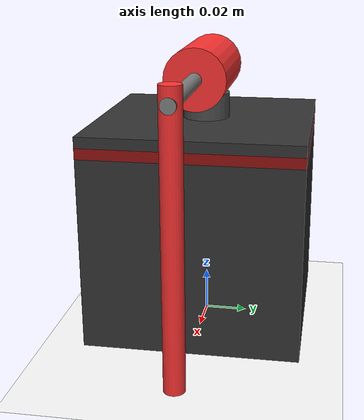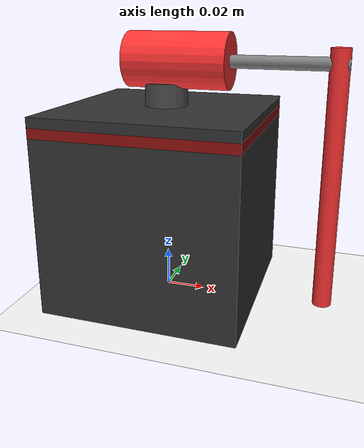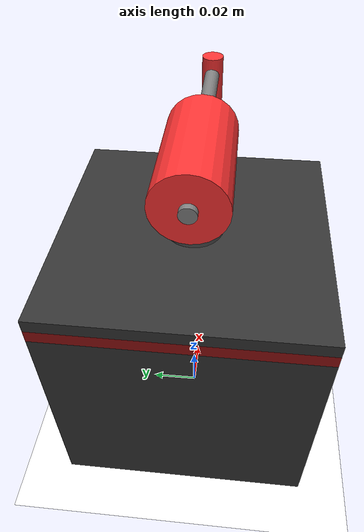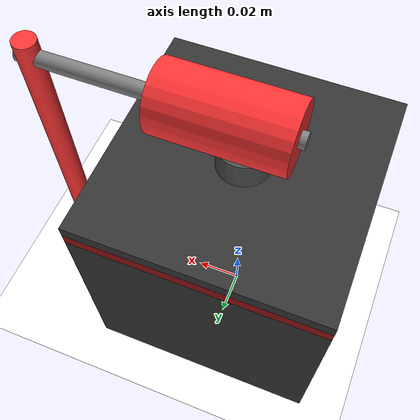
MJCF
<?xml version="1.0" encoding="utf-8"?>
<mujoco model="qube_servo3">
  <compiler angle="radian" inertiafromgeom="true"/>
  <option timestep="0.001" gravity="0 0 -9.82"/>

  <asset>
    <material name="cube_mat" rgba="0.2 0.2 0.2 1"/>
    <material name="arm_mat" rgba="0.5 0.5 0.5 1"/>
    <material name="pendulum_mat" rgba="1.0 0.2 0.2 1"/>
    <material name="joint_mat" rgba="0.3 0.3 0.3 1"/>
    <material name="led" rgba="1.0 0.0 0.0 0.5"/>
    <material name="floor" rgba="1 1 1 1"/>
  </asset>

  <worldbody>
    <!-- Floor -->
    <geom type="plane" size="1 1 0.05" material="floor" pos="0 0 -0.0001"/>

    <!-- Base fixed to world -->
    <body name="cube" pos="0 0 0.0501">
      <geom type="box"
            size="0.0501 0.0501 0.0501"
            mass="5.0"
            material="cube_mat"/>

      <geom type="box"
            size="0.05011"
            fromto="0 0 0.045 0 0 0.04"
            material="led"/>
    </body>

    <!-- Motor axis body: rotates around z-axis by theta -->
    <body name="motor_axis" pos="0 0 0.123">
      <joint name="theta"
             type="hinge"
             pos="0 0 0"
             axis="0 0 1"
             limited="true"
              range="-2.35619 2.35619"
             damping="0.00001"/>

      <!-- Motor shaft / axis visual, rotates with theta -->
      <geom type="cylinder"
            size="0.011"
            fromto="0 0 -0.0228 0 0 -0.011"
            mass="0.0106"
            material="joint_mat"/>

      <!-- Visual encoder attached to motor axis, negligible mass -->
      <geom type="cylinder"
            size="0.014"
            fromto="-0.019 0 0 0.033 0 0"
            mass="0.000001"
            contype="0"
            conaffinity="0"
            material="pendulum_mat"/>

      <!-- Arm body: connected to motor_axis through alpha hinge -->
      <body name="arm" pos="0 0 0">
        <joint name="alpha"
               type="hinge"
               pos="0 0 0"
               axis="1 0 0"
               damping="0.00001"/>

        <!-- Arm geometry: rotates with alpha -->
        <geom type="cylinder"
              size="0.00325"
              fromto="0.0886 0 0 -0.0215 0 0"
              mass="0.095"
              material="arm_mat"/>

        <!-- Pendulum rigidly attached to the end of the arm -->
        <body name="pendulum" pos="0.08385 0 0">
          <!-- No joint here: pendulum is fixed to the arm -->

          <geom type="cylinder"
                size="0.00475"
                fromto="0 0 0.0075 0 0 -0.1215"
                mass="0.024"
                material="pendulum_mat"/>
        </body>
      </body>
    </body>
  </worldbody>

  <actuator>
    <motor name="arm_motor"
           joint="theta"
           gear="1.0"
           ctrlrange="-0.1 0.1"/>
  </actuator>
</mujoco>
